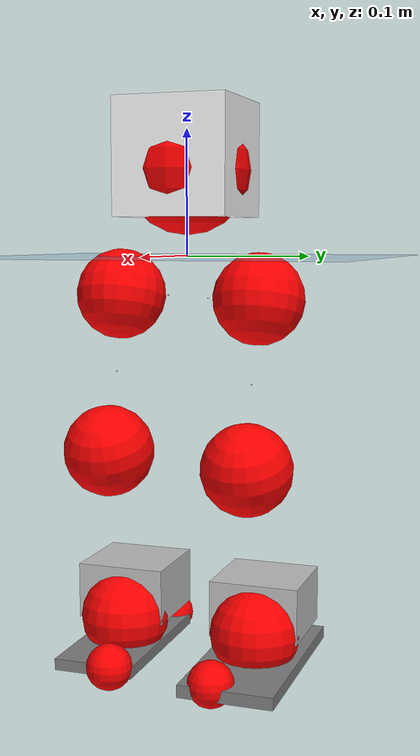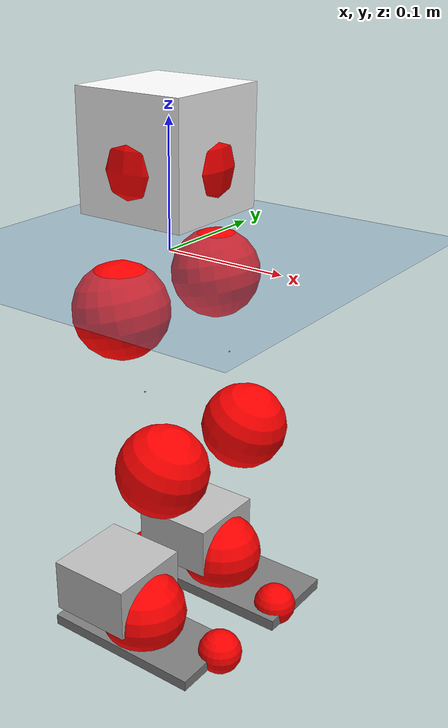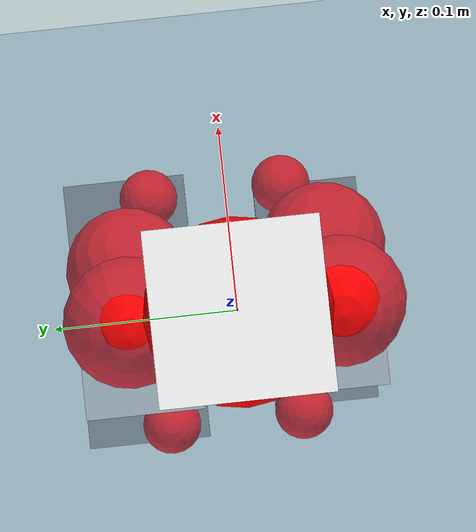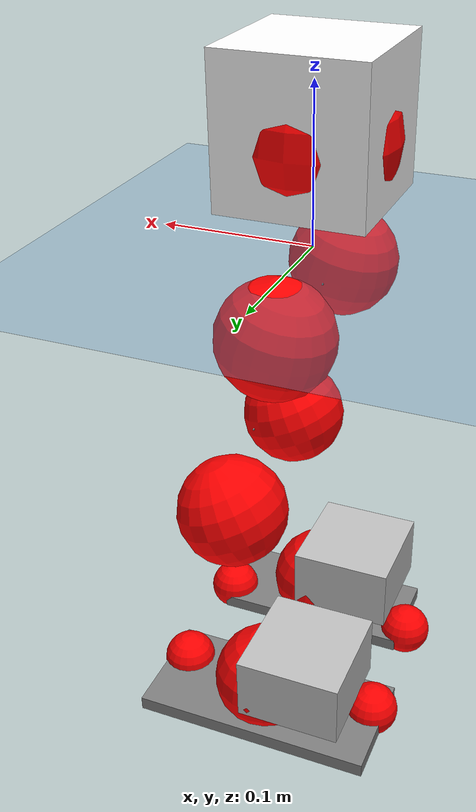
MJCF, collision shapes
<mujoco model="pi_12dof_release_v1">
  <compiler angle="radian" assetdir="assets" balanceinertia="true" inertiafromgeom="false"/>

  <option timestep="0.005" density="1.2" viscosity="2e-05"/>

  <size nkey="1"/>

  <visual>
    <quality shadowsize="8192"/>
    <map shadowclip="0.5"/>
  </visual>

  <default>
    <default class="/">
      <joint armature="0.01" damping="0.01" frictionloss="0.01"/>
      <geom contype="0" conaffinity="0" group="1" solref="-1000 -80"/>
      <site size="0.01 0.005 0.005" group="5"/>
      <general forcelimited="true" biastype="affine" gainprm="20" biasprm="0 -20 -0.5"/>
      <default class="foot">
        <geom size="0.0845 0.036 0.005" type="box" condim="6" group="4" priority="1" friction="0.9 0.2 0.2" solimp="0.015 1 0.005"/>
      </default>
      <default class="reward_collision_sphere">
        <geom group="5" rgba="1 0 0 1"/>
      </default>
    </default>
  </default>

  <asset>
    <texture type="skybox" colorspace="auto" name="//unnamed_texture_0" builtin="gradient" rgb1="0.95 0.95 0.95" rgb2="0.95 0.95 0.95" width="100" height="600"/>
    <texture type="2d" colorspace="auto" name="texplane" builtin="checker" rgb1="0.345 0.575 0.748" rgb2="0.345 0.575 0.748" markrgb="1 1 1" width="512" height="512"/>
    <material name="MatPlane" class="/" texture="texplane" texuniform="true" texrepeat="2 2" specular="0.9"/>
    <mesh name="baselink_1" class="/" file="baselink_1.STL"/>
    <mesh name="r_hip_pitch_link" class="/" file="r_hip_pitch_link.STL"/>
    <mesh name="r_hip_roll_link" class="/" file="r_hip_roll_link.STL"/>
    <mesh name="r_thigh_link" class="/" file="r_thigh_link.STL"/>
    <mesh name="r_calf_link" class="/" file="r_calf_link.STL"/>
    <mesh name="r_ankle_pitch_link" class="/" file="r_ankle_pitch_link.STL"/>
    <mesh name="r_ankle_roll_link" class="/" file="r_ankle_roll_link.STL"/>
    <mesh name="l_hip_pitch_link" class="/" file="l_hip_pitch_link.STL"/>
    <mesh name="l_hip_roll_link" class="/" file="l_hip_roll_link.STL"/>
    <mesh name="l_thigh_link" class="/" file="l_thigh_link.STL"/>
    <mesh name="l_calf_link" class="/" file="l_calf_link.STL"/>
    <mesh name="l_ankle_pitch_link" class="/" file="l_ankle_pitch_link.STL"/>
    <mesh name="l_ankle_roll_link" class="/" file="l_ankle_roll_link.STL"/>
  </asset>

  <worldbody>
    <geom name="floor" class="/" size="100 100 0.125" type="plane" group="0" material="MatPlane"/>
    <light name="toplight_shadow" class="/" pos="0 0 5" dir="0.0990148 0.0990148 -0.990148" type="directional" ambient="0.04 0.04 0.04" diffuse="0.55 0.55 0.55" specular="0.12 0.12 0.12"/>
    <light name="toplight_fill" class="/" pos="0 0 5" dir="0.0990148 0.0990148 -0.990148" type="directional" castshadow="false" ambient="0.04 0.04 0.04" diffuse="0.3 0.3 0.3" specular="0.08 0.08 0.08"/>
    <body name="trunk" pos="-0.0012908 -0.000177938 0.00010736" quat="1 0.000170406 0.00033109 -7.37743e-05">
      <inertial pos="0.00241306 -0.000857779 0.0391693" quat="0.693143 0.00559769 0.0174819 0.720566" mass="1.66793" diaginertia="0.013434 0.00203163 0.00339515"/>
      <joint name="//unnamed_joint_0" type="free"/>
      <geom name="//unnamed_geom_1" class="/" type="mesh" density="0" rgba="1 1 1 1" mesh="baselink_1"/>
      <geom name="//unnamed_geom_2" class="/" size="0.0460042 0.0460042 0.0460042" pos="0 0 0.0765141" type="box" rgba="1 1 1 1"/>
      <geom name="//unnamed_geom_3" class="reward_collision_sphere" size="0.0506046" pos="0 0 0.0669499"/>
      <site name="imu" class="/" pos="0.00111839 -0.0130382 0.00457017" size="0.00920084"/>
      <camera name="track" class="/" pos="0 -1.48481 0" quat="0.707107 0.707107 0 0" mode="trackcom"/>
      <camera name="ego_camera" class="/" pos="0.0796063 0 0.172157" quat="-0.5 -0.5 0.5 0.5"/>
      <body name="r_hip_pitch_link" pos="0.000584634 -0.016309 -0.031774" quat="0.992112 0.00105617 -0.125353 -0.000170135">
        <inertial pos="0.000959559 -0.042026 0.000542449" quat="-0.0241058 0.704975 -0.0237429 0.708425" mass="0.297285" diaginertia="0.000150958 2.27622e-05 6.84952e-05"/>
        <joint name="r_hip_pitch_joint" class="/" pos="0 0 0" axis="0.00567561 -0.999975 0.00423928" range="-1.74591 1.25858" armature="0.00915393" damping="0.00722437" frictionloss="0.0087186"/>
        <geom name="//unnamed_geom_4" class="/" type="mesh" density="0" rgba="0.75294 0.75294 0.75294 1" mesh="r_hip_pitch_link"/>
        <geom name="//unnamed_geom_5" class="/" size="0.000460042 0.000460042 0.000460042" type="box" rgba="0.75294 0.75294 0.75294 1"/>
        <body name="r_hip_roll_link" pos="0.000470053 -0.0410274 0.000344808" quat="1 2.51586e-06 4.11318e-05 2.44675e-05">
          <inertial pos="-0.00116146 -0.002681 -0.0612264" quat="0.707646 -0.081666 -0.0785632 0.697421" mass="0.306619" diaginertia="0.000450507 6.30178e-05 0.000102615"/>
          <joint name="r_hip_roll_joint" class="/" pos="0 0 0" axis="-0.999976 0.00602187 0.00334203" range="-0.118143 0.545633" armature="0.00869823" damping="0.0123121" frictionloss="0.00966756"/>
          <geom name="//unnamed_geom_6" class="/" type="mesh" density="0" rgba="0.75294 0.75294 0.75294 1" mesh="r_hip_roll_link"/>
          <geom name="//unnamed_geom_7" class="/" size="0.000460042 0.000460042 0.000460042" type="box" rgba="0.75294 0.75294 0.75294 1"/>
          <geom name="//unnamed_geom_8" class="reward_collision_sphere" size="0.0368033"/>
          <body name="r_thigh_link" pos="0.00228795 0.00307534 -0.0646067" quat="1 6.55542e-05 0.00035184 8.99679e-05">
            <inertial pos="0.00122023 0.000349874 -0.0444929" quat="0.736885 0.676018 0.000589385 0.000553708" mass="0.0904025" diaginertia="0.000170658 2.15821e-05 4.64608e-05"/>
            <joint name="r_thigh_joint" class="/" pos="0 0 0" axis="-0.0030941 0.00606959 -0.999977" stiffness="0.00599193" range="-0.322457 0.579423" armature="0.00890379" damping="0" frictionloss="0.0080015"/>
            <geom name="//unnamed_geom_9" class="/" type="mesh" density="0" rgba="0.75294 0.75294 0.75294 1" mesh="r_thigh_link"/>
            <geom name="//unnamed_geom_10" class="/" size="0.000460042 0.000460042 0.000460042" type="box" rgba="0.75294 0.75294 0.75294 1"/>
            <body name="r_calf_link" pos="0.000371455 -0.000757288 -0.0647931" quat="0.947658 4.93831e-05 0.319288 1.26677e-05">
              <inertial pos="0.000798823 -0.00155736 -0.0670504" quat="0.99997 -0.00216156 -0.00126459 -0.00738658" mass="0.652662" diaginertia="0.00489269 0.000807326 0.000143013"/>
              <joint name="r_calf_joint" class="/" pos="0 0 0" axis="-0.0068038 -0.999967 0.00435235" range="-1.60265 0.650571" armature="0.00836673" damping="0.00901912" frictionloss="0.00915847"/>
              <geom name="//unnamed_geom_11" class="/" type="mesh" density="0" rgba="0.75294 0.75294 0.75294 1" mesh="r_calf_link"/>
              <geom name="//unnamed_geom_12" class="/" size="0.000460042 0.000460042 0.000460042" type="box" rgba="0.75294 0.75294 0.75294 1"/>
              <geom name="//unnamed_geom_13" class="reward_collision_sphere" size="0.0368033"/>
              <body name="r_ankle_pitch_link" pos="0.000917416 0.00113565 -0.135265" quat="0.980118 9.8098e-05 -0.198416 -0.000441667">
                <inertial pos="0.00553591 0.00275098 -0.00276511" quat="-0.00438026 0.706099 0.0089134 0.708044" mass="0.139469" diaginertia="0.000427293 5.1546e-05 9.88367e-05"/>
                <joint name="r_ankle_pitch_joint" class="/" pos="0 0 0" axis="-0.00506723 -0.999987 0.000670154" range="-1.29716 0.552855" armature="0.00924285" damping="0.0089899" frictionloss="0.0102106"/>
                <geom name="//unnamed_geom_14" class="/" type="mesh" density="0" rgba="0.75294 0.75294 0.75294 1" mesh="r_ankle_pitch_link"/>
                <geom name="//unnamed_geom_15" class="/" size="0.0358833 0.0368033 0.0230021" type="box" rgba="0.75294 0.75294 0.75294 1"/>
                <body name="r_ankle_roll_link" pos="0.0799307 0.00114759 -0.00105813" quat="1 -0.000278526 -8.75092e-05 0.000141668">
                  <inertial pos="-0.0256942 0.000688327 -0.0113074" quat="0.559444 0.430697 0.434095 0.559539" mass="0.382696" diaginertia="0.00146256 0.000232376 0.000212843"/>
                  <joint name="r_ankle_roll_joint" class="/" pos="0 0 0" axis="-0.999917 0.0068775 0.0108798" range="-0.133011 0.107069" armature="0.00804577" damping="0.0172408" frictionloss="0.00910563"/>
                  <geom name="//unnamed_geom_16" class="/" type="mesh" density="0" rgba="0.75294 0.75294 0.75294 1" mesh="r_ankle_roll_link"/>
                  <geom name="//unnamed_geom_17" class="/" type="mesh" rgba="0.75294 0.75294 0.75294 1" mesh="r_ankle_roll_link"/>
                  <geom name="right_foot" class="foot" size="0.0700507 0.032616 0.00460366" pos="-0.0541323 0 -0.0420828"/>
                  <geom name="//unnamed_geom_19" class="reward_collision_sphere" size="0.0368033" pos="-0.0530708 0 -0.0191285"/>
                  <geom name="//unnamed_geom_20" class="reward_collision_sphere" size="0.0184017" pos="0.0159213 0.0148481 -0.0382571"/>
                  <geom name="//unnamed_geom_21" class="reward_collision_sphere" size="0.0184017" pos="-0.12737 0.0148481 -0.0382571"/>
                  <site name="right_foot" class="foot" pos="-0.0541323 0 -0.0420828" size="0.00920084"/>
                </body>
              </body>
            </body>
          </body>
        </body>
      </body>
      <body name="l_hip_pitch_link" pos="0.000889579 0.0176035 -0.0336965" quat="0.992183 -7.42523e-05 -0.124793 5.45788e-05">
        <inertial pos="0.000977893 0.0396299 -0.0025003" quat="-0.0387284 0.705507 0.0298199 0.707016" mass="0.312267" diaginertia="0.000177414 2.3381e-05 8.10164e-05"/>
        <joint name="l_hip_pitch_joint" class="/" pos="0 0 0" axis="-0.00153173 0.999999 -0.000136404" range="-1.21674 1.76272" armature="0.00994866" damping="0.0121086" frictionloss="0.00933008"/>
        <geom name="//unnamed_geom_22" class="/" type="mesh" density="0" rgba="0.75294 0.75294 0.75294 1" mesh="l_hip_pitch_link"/>
        <geom name="//unnamed_geom_23" class="/" size="0.000460042 0.000460042 0.000460042" type="box" rgba="0.75294 0.75294 0.75294 1"/>
        <body name="l_hip_roll_link" pos="0.000303215 0.0426523 -0.000217921" quat="1 -0.000210158 -1.11839e-05 -0.00027515">
          <inertial pos="-0.00363879 -0.00110213 -0.0609782" quat="0.705994 -0.0721542 -0.0834863 0.699569" mass="0.302329" diaginertia="0.000431326 6.22788e-05 9.89505e-05"/>
          <joint name="l_hip_roll_joint" class="/" pos="0 0 0" axis="-1 0.000264962 -0.000684903" range="-0.550595 0.151466" armature="0.00919564" damping="0" frictionloss="0.00923646"/>
          <geom name="//unnamed_geom_24" class="/" type="mesh" density="0" rgba="0.75294 0.75294 0.75294 1" mesh="l_hip_roll_link"/>
          <geom name="//unnamed_geom_25" class="/" size="0.000460042 0.000460042 0.000460042" type="box" rgba="0.75294 0.75294 0.75294 1"/>
          <geom name="//unnamed_geom_26" class="reward_collision_sphere" size="0.0368033"/>
          <body name="l_thigh_link" pos="-0.00110039 -0.00103022 -0.0679672" quat="1 5.37179e-05 -9.77932e-05 -0.000147277">
            <inertial pos="0.000599038 -0.00218224 -0.0444965" quat="0.677101 0.735836 0.000278214 0.00887625" mass="0.0859499" diaginertia="0.00016774 2.11063e-05 4.68087e-05"/>
            <joint name="l_thigh_joint" class="/" pos="0 0 0" axis="-2.75017e-05 0.000109926 -1" range="-0.606463 0.296534" armature="0.00907509" damping="0.00264715" frictionloss="0.00918191"/>
            <geom name="//unnamed_geom_27" class="/" type="mesh" density="0" rgba="0.75294 0.75294 0.75294 1" mesh="l_thigh_link"/>
            <geom name="//unnamed_geom_28" class="/" size="0.000460042 0.000460042 0.000460042" type="box" rgba="0.75294 0.75294 0.75294 1"/>
            <body name="l_calf_link" pos="-0.00079119 0.00130021 -0.0670972" quat="0.947559 -0.000229236 0.319581 0.000265218">
              <inertial pos="0.000129112 0.0042922 -0.0686552" quat="0.999984 0.00331991 3.06154e-05 0.00464421" mass="0.60917" diaginertia="0.00461667 0.000770164 0.000134913"/>
              <joint name="l_calf_joint" class="/" pos="0 0 0" axis="-1.55202e-05 1 2.91288e-05" stiffness="0.00295086" range="-0.597699 1.70054" armature="0.00929011" damping="0.00660051" frictionloss="0.00874592"/>
              <geom name="//unnamed_geom_29" class="/" type="mesh" density="0" rgba="0.75294 0.75294 0.75294 1" mesh="l_calf_link"/>
              <geom name="//unnamed_geom_30" class="/" size="0.000460042 0.000460042 0.000460042" type="box" rgba="0.75294 0.75294 0.75294 1"/>
              <geom name="//unnamed_geom_31" class="reward_collision_sphere" size="0.0368033"/>
              <body name="l_ankle_pitch_link" pos="-0.00082496 0.000736969 -0.131616" quat="0.980058 0.000117191 -0.198711 6.87617e-05">
                <inertial pos="0.00442017 0.000468008 -0.000372879" quat="-0.00293415 0.706962 0.00189219 0.707243" mass="0.13046" diaginertia="0.000402199 4.8586e-05 9.57425e-05"/>
                <joint name="l_ankle_pitch_joint" class="/" pos="0 0 0" axis="0.00163531 0.999997 0.00173294" range="-0.553696 1.30886" armature="0.00842047" damping="0.0101547" frictionloss="0.0087962"/>
                <geom name="//unnamed_geom_32" class="/" type="mesh" density="0" rgba="0.75294 0.75294 0.75294 1" mesh="l_ankle_pitch_link"/>
                <geom name="//unnamed_geom_33" class="/" size="0.0358833 0.0368033 0.0230021" type="box" rgba="0.75294 0.75294 0.75294 1"/>
                <body name="l_ankle_roll_link" pos="0.0824745 0.000354129 0.000743187" quat="1 0.000406168 -2.76365e-05 1.46619e-05">
                  <inertial pos="-0.0265912 -0.000718201 -0.0136415" quat="0.560197 0.431695 0.434012 0.55808" mass="0.391269" diaginertia="0.00152107 0.000228419 0.000225431"/>
                  <joint name="l_ankle_roll_joint" class="/" pos="0 0 0" axis="-0.999988 -0.00399732 -0.00276373" range="-0.171277 0.151402" armature="0.00988889" damping="0.00509784" frictionloss="0.00920249"/>
                  <geom name="//unnamed_geom_34" class="/" type="mesh" density="0" rgba="0.75294 0.75294 0.75294 1" mesh="l_ankle_roll_link"/>
                  <geom name="//unnamed_geom_35" class="/" type="mesh" rgba="0.75294 0.75294 0.75294 1" mesh="l_ankle_roll_link"/>
                  <geom name="left_foot" class="foot" size="0.083172 0.0381024 0.00500719" pos="-0.0541323 0 -0.0420828"/>
                  <geom name="//unnamed_geom_37" class="reward_collision_sphere" size="0.0368033" pos="-0.0530708 0 -0.0191285"/>
                  <geom name="//unnamed_geom_38" class="reward_collision_sphere" size="0.0184017" pos="0.0159213 -0.0148481 -0.0382571"/>
                  <geom name="//unnamed_geom_39" class="reward_collision_sphere" size="0.0184017" pos="-0.12737 -0.0148481 -0.0382571"/>
                  <site name="left_foot" class="foot" pos="-0.0541323 0 -0.0420828" size="0.00920084"/>
                </body>
              </body>
            </body>
          </body>
        </body>
      </body>
    </body>
  </worldbody>

  <contact>
    <pair class="/" geom1="floor" geom2="right_foot" name="//unnamed_contact_1"/>
    <pair class="/" geom1="floor" geom2="left_foot" name="//unnamed_contact_0"/>
  </contact>

  <actuator>
    <general name="r_hip_pitch_joint" class="/" joint="r_hip_pitch_joint" forcerange="-19.2738 19.2738" gainprm="18.5686" biasprm="0 -18.5686 -0.471892"/>
    <general name="r_hip_roll_joint" class="/" joint="r_hip_roll_joint" forcerange="-17.6972 17.6972" gainprm="18.5686" biasprm="0 -18.5686 -0.471892"/>
    <general name="r_thigh_joint" class="/" joint="r_thigh_joint" forcerange="-19.3981 19.3981" gainprm="18.5686" biasprm="0 -18.5686 -0.471892"/>
    <general name="r_calf_joint" class="/" joint="r_calf_joint" forcerange="-20.0316 20.0316" gainprm="18.5686" biasprm="0 -18.5686 -0.471892"/>
    <general name="r_ankle_pitch_joint" class="/" joint="r_ankle_pitch_joint" forcerange="-18.6454 18.6454" gainprm="18.5686" biasprm="0 -18.5686 -0.471892"/>
    <general name="r_ankle_roll_joint" class="/" joint="r_ankle_roll_joint" forcerange="-19.3817 19.3817" gainprm="18.5686" biasprm="0 -18.5686 -0.471892"/>
    <general name="l_hip_pitch_joint" class="/" joint="l_hip_pitch_joint" forcerange="-18.7808 18.7808" gainprm="18.5686" biasprm="0 -18.5686 -0.471892"/>
    <general name="l_hip_roll_joint" class="/" joint="l_hip_roll_joint" forcerange="-20.8593 20.8593" gainprm="18.5686" biasprm="0 -18.5686 -0.471892"/>
    <general name="l_thigh_joint" class="/" joint="l_thigh_joint" forcerange="-17.5848 17.5848" gainprm="18.5686" biasprm="0 -18.5686 -0.471892"/>
    <general name="l_calf_joint" class="/" joint="l_calf_joint" forcerange="-19.5901 19.5901" gainprm="18.5686" biasprm="0 -18.5686 -0.471892"/>
    <general name="l_ankle_pitch_joint" class="/" joint="l_ankle_pitch_joint" forcerange="-19.7022 19.7022" gainprm="18.5686" biasprm="0 -18.5686 -0.471892"/>
    <general name="l_ankle_roll_joint" class="/" joint="l_ankle_roll_joint" forcerange="-21.1984 21.1984" gainprm="18.5686" biasprm="0 -18.5686 -0.471892"/>
  </actuator>

  <sensor>
    <gyro site="imu" name="imu_angular_velocity"/>
    <velocimeter site="imu" name="imu_linear_velocity"/>
    <framelinvel objtype="site" objname="left_foot" name="left_foot_global_linear_velocity"/>
    <framelinvel objtype="site" objname="right_foot" name="right_foot_global_linear_velocity"/>
  </sensor>

  <keyframe>
    <key name="home" qpos="0 0 0.291 1 0 0 0 0.4 0 0 -0.8 0.4 0 -0.4 0 0 0.8 -0.4 0"/>
  </keyframe>
</mujoco>
